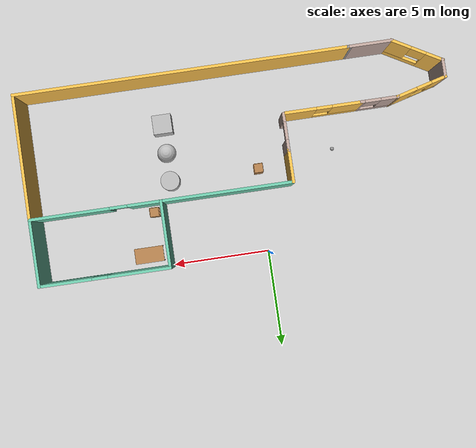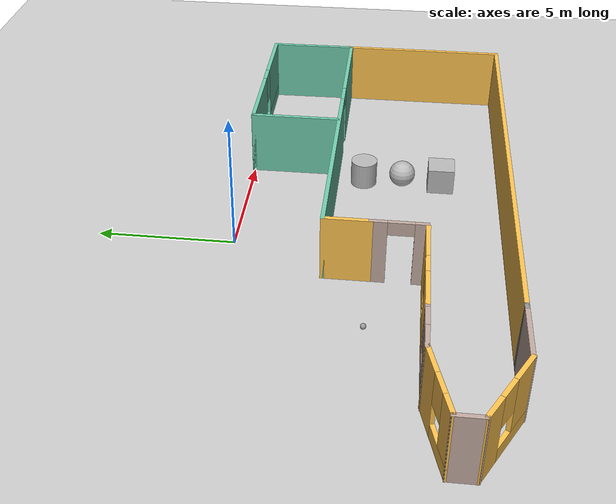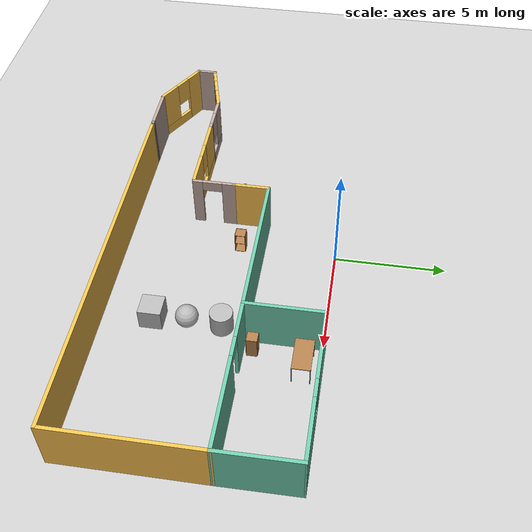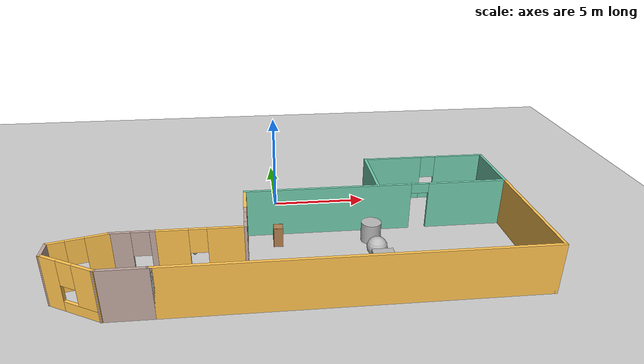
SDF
<sdf version="1.4">
 <world name="default">
  <light name="sun" type="directional">
   <pose>0 0 10 0 -0 0</pose>
   <diffuse>0.8 0.8 0.8 1</diffuse>
   <specular>0.2 0.2 0.2 1</specular>
   <attenuation>
    <range>1000</range>
    <constant>0.9</constant>
    <linear>0.01</linear>
    <quadratic>0.001</quadratic>
   </attenuation>
   <direction>-0.5 0.1 -0.9</direction>
  </light>
  <model name="ground_plane">
   <static>1</static>
   <link name="link">
    <collision name="collision">
     <geometry><plane><normal>0 0 1</normal><size>100 100</size></plane></geometry>
     <surface><friction><ode><mu>100</mu><mu2>50</mu2></ode></friction></surface>
    </collision>
    <visual name="visual">
     <cast_shadows>0</cast_shadows>
     <geometry><plane><normal>0 0 1</normal><size>100 100</size></plane></geometry>
     <material>
      <script><uri>file://media/materials/scripts/gazebo.material</uri><name>Gazebo/Grey</name></script>
     </material>
    </visual>
   </link>
  </model>
  <gravity>0 0 -9.8</gravity>
  <magnetic_field>6e-06 2.3e-05 -4.2e-05</magnetic_field>
  <atmosphere type="adiabatic"/>
  <physics name="default_physics" default="0" type="ode">
   <max_step_size>0.001</max_step_size>
   <real_time_factor>1</real_time_factor>
   <real_time_update_rate>1000</real_time_update_rate>
  </physics>
  <scene><ambient>0.4 0.4 0.4 1</ambient><background>0.7 0.7 0.7 1</background><shadows>1</shadows></scene>
  <spherical_coordinates>
   <surface_model>EARTH_WGS84</surface_model>
   <latitude_deg>0</latitude_deg>
   <longitude_deg>0</longitude_deg>
   <elevation>0</elevation>
   <heading_deg>0</heading_deg>
  </spherical_coordinates>
  <model name="myworld">
   <pose>0.843103 -4.83477 0 0 -0 0</pose>
   <link name="Wall_0">
    <pose>-4.54865 -1.96978 0 0 -0 3.14159</pose>
    <visual name="Wall_0_Visual_0">
     <pose>-1.18685 0 1.25 0 -0 0</pose>
     <geometry><box><size>1.6263 0.15 2.5</size></box></geometry>
     <material>
      <script><uri>file://media/materials/scripts/gazebo.material</uri><name>Gazebo/Grey</name></script>
      <ambient>1 0.764706 0.305882 1</ambient>
     </material>
     <meta><layer>0</layer></meta>
    </visual>
    <collision name="Wall_0_Collision_0">
     <geometry><box><size>1.6263 0.15 2.5</size></box></geometry>
     <pose>-1.18685 0 1.25 0 -0 0</pose>
    </collision>
    <visual name="Wall_0_Visual_1">
     <pose>0.813149 0 0.25 0 -0 0</pose>
     <geometry><box><size>2.3737 0.15 0.5</size></box></geometry>
     <material>
      <script><uri>file://media/materials/scripts/gazebo.material</uri><name>Gazebo/Grey</name></script>
      <ambient>1 0.764706 0.305882 1</ambient>
     </material>
     <meta><layer>0</layer></meta>
    </visual>
    <collision name="Wall_0_Collision_1">
     <geometry><box><size>2.3737 0.15 0.5</size></box></geometry>
     <pose>0.813149 0 0.25 0 -0 0</pose>
    </collision>
    <visual name="Wall_0_Visual_2">
     <pose>1.21315 0 1.5 0 -0 0</pose>
     <geometry><box><size>1.5737 0.15 2</size></box></geometry>
     <material>
      <script><uri>file://media/materials/scripts/gazebo.material</uri><name>Gazebo/Grey</name></script>
      <ambient>1 0.764706 0.305882 1</ambient>
     </material>
     <meta><layer>0</layer></meta>
    </visual>
    <collision name="Wall_0_Collision_2">
     <geometry><box><size>1.5737 0.15 2</size></box></geometry>
     <pose>1.21315 0 1.5 0 -0 0</pose>
    </collision>
    <visual name="Wall_0_Visual_3">
     <pose>0.026298 0 1.9 0 -0 0</pose>
     <geometry><box><size>0.8 0.15 1.2</size></box></geometry>
     <material>
      <script><uri>file://media/materials/scripts/gazebo.material</uri><name>Gazebo/Grey</name></script>
      <ambient>1 0.764706 0.305882 1</ambient>
     </material>
     <meta><layer>0</layer></meta>
    </visual>
    <collision name="Wall_0_Collision_3">
     <geometry><box><size>0.8 0.15 1.2</size></box></geometry>
     <pose>0.026298 0 1.9 0 -0 0</pose>
    </collision>
   </link>
   <link name="Wall_16">
    <pose>-7.39865 -1.96978 0 0 -0 3.14159</pose>
    <visual name="Wall_16_Visual_0">
     <pose>-0.874364 0 1.25 0 -0 0</pose>
     <geometry><box><size>0.251273 0.15 2.5</size></box></geometry>
     <material>
      <script><uri>file://media/materials/scripts/gazebo.material</uri><name>Gazebo/Grey</name></script>
      <ambient>0.760784 0.662745 0.627451 1</ambient>
     </material>
     <meta><layer>0</layer></meta>
    </visual>
    <collision name="Wall_16_Collision_0">
     <geometry><box><size>0.251273 0.15 2.5</size></box></geometry>
     <pose>-0.874364 0 1.25 0 -0 0</pose>
    </collision>
    <visual name="Wall_16_Visual_1">
     <pose>0.125636 0 0.25 0 -0 0</pose>
     <geometry><box><size>1.74873 0.15 0.5</size></box></geometry>
     <material>
      <script><uri>file://media/materials/scripts/gazebo.material</uri><name>Gazebo/Grey</name></script>
      <ambient>0.760784 0.662745 0.627451 1</ambient>
     </material>
     <meta><layer>0</layer></meta>
    </visual>
    <collision name="Wall_16_Collision_1">
     <geometry><box><size>1.74873 0.15 0.5</size></box></geometry>
     <pose>0.125636 0 0.25 0 -0 0</pose>
    </collision>
    <visual name="Wall_16_Visual_2">
     <pose>0.525636 0 1.5 0 -0 0</pose>
     <geometry><box><size>0.948727 0.15 2</size></box></geometry>
     <material>
      <script><uri>file://media/materials/scripts/gazebo.material</uri><name>Gazebo/Grey</name></script>
      <ambient>0.760784 0.662745 0.627451 1</ambient>
     </material>
     <meta><layer>0</layer></meta>
    </visual>
    <collision name="Wall_16_Collision_2">
     <geometry><box><size>0.948727 0.15 2</size></box></geometry>
     <pose>0.525636 0 1.5 0 -0 0</pose>
    </collision>
    <visual name="Wall_16_Visual_3">
     <pose>-0.348727 0 1.9 0 -0 0</pose>
     <geometry><box><size>0.8 0.15 1.2</size></box></geometry>
     <material>
      <script><uri>file://media/materials/scripts/gazebo.material</uri><name>Gazebo/Grey</name></script>
      <ambient>0.760784 0.662745 0.627451 1</ambient>
     </material>
     <meta><layer>0</layer></meta>
    </visual>
    <collision name="Wall_16_Collision_3">
     <geometry><box><size>0.8 0.15 1.2</size></box></geometry>
     <pose>-0.348727 0 1.9 0 -0 0</pose>
    </collision>
   </link>
   <link name="Wall_17">
    <pose>-9.57936 -2.30625 0 0 0 -2.87979</pose>
    <visual name="Wall_17_Visual_0">
     <pose>-0.813396 0 1.25 0 -0 0</pose>
     <geometry><box><size>1.12321 0.15 2.5</size></box></geometry>
     <material>
      <script><uri>file://media/materials/scripts/gazebo.material</uri><name>Gazebo/Grey</name></script>
      <ambient>1 0.764706 0.305882 1</ambient>
     </material>
     <meta><layer>0</layer></meta>
    </visual>
    <collision name="Wall_17_Collision_0">
     <geometry><box><size>1.12321 0.15 2.5</size></box></geometry>
     <pose>-0.813396 0 1.25 0 -0 0</pose>
    </collision>
    <visual name="Wall_17_Visual_1">
     <pose>0.561604 0 0.25 0 -0 0</pose>
     <geometry><box><size>1.62679 0.15 0.5</size></box></geometry>
     <material>
      <script><uri>file://media/materials/scripts/gazebo.material</uri><name>Gazebo/Grey</name></script>
      <ambient>1 0.764706 0.305882 1</ambient>
     </material>
     <meta><layer>0</layer></meta>
    </visual>
    <collision name="Wall_17_Collision_1">
     <geometry><box><size>1.62679 0.15 0.5</size></box></geometry>
     <pose>0.561604 0 0.25 0 -0 0</pose>
    </collision>
    <visual name="Wall_17_Visual_2">
     <pose>0.961604 0 1.5 0 -0 0</pose>
     <geometry><box><size>0.826792 0.15 2</size></box></geometry>
     <material>
      <script><uri>file://media/materials/scripts/gazebo.material</uri><name>Gazebo/Grey</name></script>
      <ambient>1 0.764706 0.305882 1</ambient>
     </material>
     <meta><layer>0</layer></meta>
    </visual>
    <collision name="Wall_17_Collision_2">
     <geometry><box><size>0.826792 0.15 2</size></box></geometry>
     <pose>0.961604 0 1.5 0 -0 0</pose>
    </collision>
    <visual name="Wall_17_Visual_3">
     <pose>0.148208 0 1.9 0 -0 0</pose>
     <geometry><box><size>0.8 0.15 1.2</size></box></geometry>
     <material>
      <script><uri>file://media/materials/scripts/gazebo.material</uri><name>Gazebo/Grey</name></script>
      <ambient>1 0.764706 0.305882 1</ambient>
     </material>
     <meta><layer>0</layer></meta>
    </visual>
    <collision name="Wall_17_Collision_3">
     <geometry><box><size>0.8 0.15 1.2</size></box></geometry>
     <pose>0.148208 0 1.9 0 -0 0</pose>
    </collision>
   </link>
   <link name="Wall_18">
    <collision name="Wall_18_Collision">
     <geometry><box><size>1 0.15 2.5</size></box></geometry>
     <pose>0 0 1.25 0 -0 0</pose>
    </collision>
    <visual name="Wall_18_Visual">
     <pose>0 0 1.25 0 -0 0</pose>
     <geometry><box><size>1 0.15 2.5</size></box></geometry>
     <material>
      <script><uri>file://media/materials/scripts/gazebo.material</uri><name>Gazebo/Grey</name></script>
      <ambient>0.760784 0.662745 0.627451 1</ambient>
     </material>
     <meta><layer>0</layer></meta>
    </visual>
    <pose>-10.8351 -3.06771 0 0 0 -1.5708</pose>
   </link>
   <link name="Wall_19">
    <pose>-9.63675 -4.16785 0 0 0 -0.513078</pose>
    <visual name="Wall_19_Visual_0">
     <pose>-0.96391 0 1.25 0 -0 0</pose>
     <geometry><box><size>0.973008 0.15 2.5</size></box></geometry>
     <material>
      <script><uri>file://media/materials/scripts/gazebo.material</uri><name>Gazebo/Grey</name></script>
      <ambient>1 0.764706 0.305882 1</ambient>
     </material>
     <meta><layer>0</layer></meta>
    </visual>
    <collision name="Wall_19_Collision_0">
     <geometry><box><size>0.973008 0.15 2.5</size></box></geometry>
     <pose>-0.96391 0 1.25 0 -0 0</pose>
    </collision>
    <visual name="Wall_19_Visual_1">
     <pose>0.486504 0 0.25 0 -0 0</pose>
     <geometry><box><size>1.92782 0.15 0.5</size></box></geometry>
     <material>
      <script><uri>file://media/materials/scripts/gazebo.material</uri><name>Gazebo/Grey</name></script>
      <ambient>1 0.764706 0.305882 1</ambient>
     </material>
     <meta><layer>0</layer></meta>
    </visual>
    <collision name="Wall_19_Collision_1">
     <geometry><box><size>1.92782 0.15 0.5</size></box></geometry>
     <pose>0.486504 0 0.25 0 -0 0</pose>
    </collision>
    <visual name="Wall_19_Visual_2">
     <pose>0.886504 0 1.5 0 -0 0</pose>
     <geometry><box><size>1.12782 0.15 2</size></box></geometry>
     <material>
      <script><uri>file://media/materials/scripts/gazebo.material</uri><name>Gazebo/Grey</name></script>
      <ambient>1 0.764706 0.305882 1</ambient>
     </material>
     <meta><layer>0</layer></meta>
    </visual>
    <collision name="Wall_19_Collision_2">
     <geometry><box><size>1.12782 0.15 2</size></box></geometry>
     <pose>0.886504 0 1.5 0 -0 0</pose>
    </collision>
    <visual name="Wall_19_Visual_3">
     <pose>-0.077406 0 1.9 0 -0 0</pose>
     <geometry><box><size>0.8 0.15 1.2</size></box></geometry>
     <material>
      <script><uri>file://media/materials/scripts/gazebo.material</uri><name>Gazebo/Grey</name></script>
      <ambient>1 0.764706 0.305882 1</ambient>
     </material>
     <meta><layer>0</layer></meta>
    </visual>
    <collision name="Wall_19_Collision_3">
     <geometry><box><size>0.8 0.15 1.2</size></box></geometry>
     <pose>-0.077406 0 1.9 0 -0 0</pose>
    </collision>
   </link>
   <link name="Wall_2">
    <collision name="Wall_2_Collision">
     <geometry><box><size>17.25 0.15 2.5</size></box></geometry>
     <pose>0 0 1.25 0 -0 0</pose>
    </collision>
    <visual name="Wall_2_Visual">
     <pose>0 0 1.25 0 -0 0</pose>
     <geometry><box><size>17.25 0.15 2.5</size></box></geometry>
     <material>
      <script><uri>file://media/materials/scripts/gazebo.material</uri><name>Gazebo/Grey</name></script>
      <ambient>1 0.764706 0.305882 1</ambient>
     </material>
     <meta><layer>0</layer></meta>
    </visual>
    <pose>2.31156 -4.84298 0 0 -0 0</pose>
   </link>
   <link name="Wall_21">
    <pose>-2.48844 -1.01798 0 0 0 -1.5708</pose>
    <visual name="Wall_21_Visual_0">
     <pose>-0.687814 0 1.25 0 -0 0</pose>
     <geometry><box><size>0.624372 0.15 2.5</size></box></geometry>
     <material>
      <script><uri>file://media/materials/scripts/gazebo.material</uri><name>Gazebo/Grey</name></script>
      <ambient>0.760784 0.662745 0.627451 1</ambient>
     </material>
     <meta><layer>0</layer></meta>
    </visual>
    <collision name="Wall_21_Collision_0">
     <geometry><box><size>0.624372 0.15 2.5</size></box></geometry>
     <pose>-0.687814 0 1.25 0 -0 0</pose>
    </collision>
    <visual name="Wall_21_Visual_1">
     <pose>0.762186 0 1.25 0 -0 0</pose>
     <geometry><box><size>0.475628 0.15 2.5</size></box></geometry>
     <material>
      <script><uri>file://media/materials/scripts/gazebo.material</uri><name>Gazebo/Grey</name></script>
      <ambient>0.760784 0.662745 0.627451 1</ambient>
     </material>
     <meta><layer>0</layer></meta>
    </visual>
    <collision name="Wall_21_Collision_1">
     <geometry><box><size>0.475628 0.15 2.5</size></box></geometry>
     <pose>0.762186 0 1.25 0 -0 0</pose>
    </collision>
    <visual name="Wall_21_Visual_2">
     <pose>0.074372 0 2.25 0 -0 0</pose>
     <geometry><box><size>0.9 0.15 0.5</size></box></geometry>
     <material>
      <script><uri>file://media/materials/scripts/gazebo.material</uri><name>Gazebo/Grey</name></script>
      <ambient>0.760784 0.662745 0.627451 1</ambient>
     </material>
     <meta><layer>0</layer></meta>
    </visual>
    <collision name="Wall_21_Collision_2">
     <geometry><box><size>0.9 0.15 0.5</size></box></geometry>
     <pose>0.074372 0 2.25 0 -0 0</pose>
    </collision>
   </link>
   <link name="Wall_3">
    <collision name="Wall_3_Collision">
     <geometry><box><size>6.5 0.15 2.5</size></box></geometry>
     <pose>0 0 1.25 0 -0 0</pose>
    </collision>
    <visual name="Wall_3_Visual">
     <pose>0 0 1.25 0 -0 0</pose>
     <geometry><box><size>6.5 0.15 2.5</size></box></geometry>
     <material>
      <script><uri>file://media/materials/scripts/gazebo.material</uri><name>Gazebo/Grey</name></script>
      <ambient>1 0.764706 0.305882 1</ambient>
     </material>
     <meta><layer>0</layer></meta>
    </visual>
    <pose>10.8616 -1.66798 0 0 -0 1.5708</pose>
   </link>
   <link name="Wall_31">
    <collision name="Wall_31_Collision">
     <geometry><box><size>3.5 0.15 2.5</size></box></geometry>
     <pose>0 0 1.25 0 -0 0</pose>
    </collision>
    <visual name="Wall_31_Visual">
     <pose>0 0 1.25 0 -0 0</pose>
     <geometry><box><size>3.5 0.15 2.5</size></box></geometry>
     <material>
      <script><uri>file://media/materials/scripts/gazebo.material</uri><name>Gazebo/Grey</name></script>
      <ambient>0.435294 0.796078 0.67451 1</ambient>
     </material>
     <meta><layer>0</layer></meta>
    </visual>
    <pose>4.23207 3.19449 0 0 -0 1.5708</pose>
   </link>
   <link name="Wall_32">
    <pose>7.53207 4.86949 0 0 -0 0</pose>
    <visual name="Wall_32_Visual_0">
     <pose>-1.76514 0 1.25 0 -0 0</pose>
     <geometry><box><size>3.21973 0.15 2.5</size></box></geometry>
     <material>
      <script><uri>file://media/materials/scripts/gazebo.material</uri><name>Gazebo/Grey</name></script>
      <ambient>0.435294 0.796078 0.67451 1</ambient>
     </material>
     <meta><layer>0</layer></meta>
    </visual>
    <collision name="Wall_32_Collision_0">
     <geometry><box><size>3.21973 0.15 2.5</size></box></geometry>
     <pose>-1.76514 0 1.25 0 -0 0</pose>
    </collision>
    <visual name="Wall_32_Visual_1">
     <pose>1.60986 0 0.25 0 -0 0</pose>
     <geometry><box><size>3.53027 0.15 0.5</size></box></geometry>
     <material>
      <script><uri>file://media/materials/scripts/gazebo.material</uri><name>Gazebo/Grey</name></script>
      <ambient>0.435294 0.796078 0.67451 1</ambient>
     </material>
     <meta><layer>0</layer></meta>
    </visual>
    <collision name="Wall_32_Collision_1">
     <geometry><box><size>3.53027 0.15 0.5</size></box></geometry>
     <pose>1.60986 0 0.25 0 -0 0</pose>
    </collision>
    <visual name="Wall_32_Visual_2">
     <pose>2.00986 0 1.5 0 -0 0</pose>
     <geometry><box><size>2.73027 0.15 2</size></box></geometry>
     <material>
      <script><uri>file://media/materials/scripts/gazebo.material</uri><name>Gazebo/Grey</name></script>
      <ambient>0.435294 0.796078 0.67451 1</ambient>
     </material>
     <meta><layer>0</layer></meta>
    </visual>
    <collision name="Wall_32_Collision_2">
     <geometry><box><size>2.73027 0.15 2</size></box></geometry>
     <pose>2.00986 0 1.5 0 -0 0</pose>
    </collision>
    <visual name="Wall_32_Visual_3">
     <pose>0.244726 0 1.9 0 -0 0</pose>
     <geometry><box><size>0.8 0.15 1.2</size></box></geometry>
     <material>
      <script><uri>file://media/materials/scripts/gazebo.material</uri><name>Gazebo/Grey</name></script>
      <ambient>0.435294 0.796078 0.67451 1</ambient>
     </material>
     <meta><layer>0</layer></meta>
    </visual>
    <collision name="Wall_32_Collision_3">
     <geometry><box><size>0.8 0.15 1.2</size></box></geometry>
     <pose>0.244726 0 1.9 0 -0 0</pose>
    </collision>
   </link>
   <link name="Wall_33">
    <collision name="Wall_33_Collision">
     <geometry><box><size>3.5126 0.15 2.5</size></box></geometry>
     <pose>0 0 1.25 0 -0 0</pose>
    </collision>
    <visual name="Wall_33_Visual">
     <pose>0 0 1.25 0 -0 0</pose>
     <geometry><box><size>3.5126 0.15 2.5</size></box></geometry>
     <material>
      <script><uri>file://media/materials/scripts/gazebo.material</uri><name>Gazebo/Grey</name></script>
      <ambient>0.435294 0.796078 0.67451 1</ambient>
     </material>
     <meta><layer>0</layer></meta>
    </visual>
    <pose>10.8468 3.18825 0 0 0 -1.56202</pose>
   </link>
   <link name="Wall_4">
    <pose>4.18656 1.50702 0 0 -0 3.14159</pose>
    <visual name="Wall_4_Visual_0">
     <pose>-4.7012 0 1.25 0 -0 0</pose>
     <geometry><box><size>4.09761 0.15 2.5</size></box></geometry>
     <material>
      <script><uri>file://media/materials/scripts/gazebo.material</uri><name>Gazebo/Grey</name></script>
      <ambient>0.435294 0.796078 0.67451 1</ambient>
     </material>
     <meta><layer>0</layer></meta>
    </visual>
    <collision name="Wall_4_Collision_0">
     <geometry><box><size>4.09761 0.15 2.5</size></box></geometry>
     <pose>-4.7012 0 1.25 0 -0 0</pose>
    </collision>
    <visual name="Wall_4_Visual_1">
     <pose>2.4988 0 1.25 0 -0 0</pose>
     <geometry><box><size>8.50239 0.15 2.5</size></box></geometry>
     <material>
      <script><uri>file://media/materials/scripts/gazebo.material</uri><name>Gazebo/Grey</name></script>
      <ambient>0.435294 0.796078 0.67451 1</ambient>
     </material>
     <meta><layer>0</layer></meta>
    </visual>
    <collision name="Wall_4_Collision_1">
     <geometry><box><size>8.50239 0.15 2.5</size></box></geometry>
     <pose>2.4988 0 1.25 0 -0 0</pose>
    </collision>
    <visual name="Wall_4_Visual_2">
     <pose>-2.20239 0 2.25 0 -0 0</pose>
     <geometry><box><size>0.9 0.15 0.5</size></box></geometry>
     <material>
      <script><uri>file://media/materials/scripts/gazebo.material</uri><name>Gazebo/Grey</name></script>
      <ambient>0.435294 0.796078 0.67451 1</ambient>
     </material>
     <meta><layer>0</layer></meta>
    </visual>
    <collision name="Wall_4_Collision_2">
     <geometry><box><size>0.9 0.15 0.5</size></box></geometry>
     <pose>-2.20239 0 2.25 0 -0 0</pose>
    </collision>
   </link>
   <link name="Wall_5">
    <collision name="Wall_5_Collision">
     <geometry><box><size>1.75 0.15 2.5</size></box></geometry>
     <pose>0 0 1.25 0 -0 0</pose>
    </collision>
    <visual name="Wall_5_Visual">
     <pose>0 0 1.25 0 -0 0</pose>
     <geometry><box><size>1.75 0.15 2.5</size></box></geometry>
     <material>
      <script><uri>file://media/materials/scripts/gazebo.material</uri><name>Gazebo/Grey</name></script>
      <ambient>1 0.764706 0.305882 1</ambient>
     </material>
     <meta><layer>0</layer></meta>
    </visual>
    <pose>-2.48844 0.707016 0 0 0 -1.5708</pose>
   </link>
   <link name="Wall_7">
    <collision name="Wall_7_Collision">
     <geometry><box><size>0.15 0.15 2.5</size></box></geometry>
     <pose>0 0 1.25 0 -0 0</pose>
    </collision>
    <visual name="Wall_7_Visual">
     <pose>0 0 1.25 0 -0 0</pose>
     <geometry><box><size>0.15 0.15 2.5</size></box></geometry>
     <material>
      <script><uri>file://media/materials/scripts/gazebo.material</uri><name>Gazebo/Grey</name></script>
      <ambient>1 1 1 1</ambient>
     </material>
     <meta><layer>0</layer></meta>
    </visual>
    <pose>-6.23844 -4.84298 0 0 -0 0</pose>
   </link>
   <link name="Wall_8">
    <collision name="Wall_8_Collision">
     <geometry><box><size>0.25 0.15 2.5</size></box></geometry>
     <pose>0 0 1.25 0 -0 0</pose>
    </collision>
    <visual name="Wall_8_Visual">
     <pose>0 0 1.25 0 -0 0</pose>
     <geometry><box><size>0.25 0.15 2.5</size></box></geometry>
     <material>
      <script><uri>file://media/materials/scripts/gazebo.material</uri><name>Gazebo/Grey</name></script>
      <ambient>1 1 1 1</ambient>
     </material>
     <meta><layer>0</layer></meta>
    </visual>
    <pose>-6.28844 -4.84298 0 0 -0 3.14159</pose>
   </link>
   <link name="Wall_9">
    <collision name="Wall_9_Collision">
     <geometry><box><size>2.25 0.15 2.5</size></box></geometry>
     <pose>0 0 1.25 0 -0 0</pose>
    </collision>
    <visual name="Wall_9_Visual">
     <pose>0 0 1.25 0 -0 0</pose>
     <geometry><box><size>2.25 0.15 2.5</size></box></geometry>
     <material>
      <script><uri>file://media/materials/scripts/gazebo.material</uri><name>Gazebo/Grey</name></script>
      <ambient>0.760784 0.662745 0.627451 1</ambient>
     </material>
     <meta><layer>0</layer></meta>
    </visual>
    <pose>-7.38844 -4.84298 0 0 -0 3.14159</pose>
   </link>
   <static>1</static>
  </model>
  <model name="cabinet">
   <static>1</static>
   <link name="cabinet_bottom_plate">
    <inertial>
     <pose>0 0 -1 0 -0 0</pose>
     <inertia><ixx>2.05</ixx><ixy>0</ixy><ixz>0</ixz><iyy>2.05</iyy><iyz>0</iyz><izz>2.05</izz></inertia>
     <mass>25</mass>
    </inertial>
    <collision name="cabinet_bottom_plate_geom">
     <pose>0 0 0.01 0 -0 0</pose>
     <geometry><box><size>0.45 0.45 0.02</size></box></geometry>
    </collision>
    <visual name="cabinet_bottom_plate_geom_visual">
     <pose>0 0 0.01 0 -0 0</pose>
     <geometry><box><size>0.45 0.45 0.02</size></box></geometry>
     <material>
      <script><uri>file://media/materials/scripts/gazebo.material</uri><name>Gazebo/Wood</name></script>
     </material>
    </visual>
    <collision name="cabinet_bottom_plate_geom_cabinet_back_plate">
     <pose>0.235 0 0.51 0 -0 0</pose>
     <geometry><box><size>0.02 0.45 1.02</size></box></geometry>
    </collision>
    <visual name="cabinet_bottom_plate_geom_cabinet_back_plate_visual">
     <pose>0.235 0 0.51 0 -0 0</pose>
     <geometry><box><size>0.02 0.45 1.02</size></box></geometry>
     <material>
      <script><uri>file://media/materials/scripts/gazebo.material</uri><name>Gazebo/Wood</name></script>
     </material>
    </visual>
    <collision name="cabinet_bottom_plate_geom_cabinet_left_plate">
     <pose>0 0.235 0.51 0 -0 0</pose>
     <geometry><box><size>0.45 0.02 1.02</size></box></geometry>
    </collision>
    <visual name="cabinet_bottom_plate_geom_cabinet_left_plate_visual">
     <pose>0 0.235 0.51 0 -0 0</pose>
     <geometry><box><size>0.45 0.02 1.02</size></box></geometry>
     <material>
      <script><uri>file://media/materials/scripts/gazebo.material</uri><name>Gazebo/Wood</name></script>
     </material>
    </visual>
    <collision name="cabinet_bottom_plate_geom_cabinet_middle_plate">
     <pose>0 0 0.51 0 -0 0</pose>
     <geometry><box><size>0.45 0.45 0.02</size></box></geometry>
    </collision>
    <visual name="cabinet_bottom_plate_geom_cabinet_middle_plate_visual">
     <pose>0 0 0.51 0 -0 0</pose>
     <geometry><box><size>0.45 0.45 0.02</size></box></geometry>
     <material>
      <script><uri>file://media/materials/scripts/gazebo.material</uri><name>Gazebo/Wood</name></script>
     </material>
    </visual>
    <collision name="cabinet_bottom_plate_geom_cabinet_right_plate">
     <pose>0 -0.235 0.51 0 -0 0</pose>
     <geometry><box><size>0.45 0.02 1.02</size></box></geometry>
    </collision>
    <visual name="cabinet_bottom_plate_geom_cabinet_right_plate_visual">
     <pose>0 -0.235 0.51 0 -0 0</pose>
     <geometry><box><size>0.45 0.02 1.02</size></box></geometry>
     <material>
      <script><uri>file://media/materials/scripts/gazebo.material</uri><name>Gazebo/Wood</name></script>
     </material>
    </visual>
    <collision name="cabinet_bottom_plate_geom_cabinet_top_plate">
     <pose>0 0 1.01 0 -0 0</pose>
     <geometry><box><size>0.45 0.45 0.02</size></box></geometry>
    </collision>
    <visual name="cabinet_bottom_plate_geom_cabinet_top_plate_visual">
     <pose>0 0 1.01 0 -0 0</pose>
     <geometry><box><size>0.45 0.45 0.02</size></box></geometry>
     <material>
      <script><uri>file://media/materials/scripts/gazebo.material</uri><name>Gazebo/Wood</name></script>
     </material>
    </visual>
   </link>
   <pose>-0.081682 -4.3792 0 0 -0 3.13658</pose>
  </model>
  <model name="table">
   <static>1</static>
   <link name="link">
    <collision name="surface">
     <pose>0 0 1 0 -0 0</pose>
     <geometry><box><size>1.5 0.8 0.03</size></box></geometry>
     <surface><friction><ode><mu>0.6</mu><mu2>0.6</mu2></ode></friction></surface>
    </collision>
    <visual name="visual1">
     <pose>0 0 1 0 -0 0</pose>
     <geometry><box><size>1.5 0.8 0.03</size></box></geometry>
     <material>
      <script><uri>file://media/materials/scripts/gazebo.material</uri><name>Gazebo/Wood</name></script>
     </material>
    </visual>
    <collision name="front_left_leg">
     <pose>0.68 0.38 0.5 0 -0 0</pose>
     <geometry><cylinder><radius>0.02</radius><length>1</length></cylinder></geometry>
    </collision>
    <visual name="front_left_leg">
     <pose>0.68 0.38 0.5 0 -0 0</pose>
     <geometry><cylinder><radius>0.02</radius><length>1</length></cylinder></geometry>
     <material>
      <script><uri>file://media/materials/scripts/gazebo.material</uri><name>Gazebo/Grey</name></script>
     </material>
    </visual>
    <collision name="front_right_leg">
     <pose>0.68 -0.38 0.5 0 -0 0</pose>
     <geometry><cylinder><radius>0.02</radius><length>1</length></cylinder></geometry>
    </collision>
    <visual name="front_right_leg">
     <pose>0.68 -0.38 0.5 0 -0 0</pose>
     <geometry><cylinder><radius>0.02</radius><length>1</length></cylinder></geometry>
     <material>
      <script><uri>file://media/materials/scripts/gazebo.material</uri><name>Gazebo/Grey</name></script>
     </material>
    </visual>
    <collision name="back_right_leg">
     <pose>-0.68 -0.38 0.5 0 -0 0</pose>
     <geometry><cylinder><radius>0.02</radius><length>1</length></cylinder></geometry>
    </collision>
    <visual name="back_right_leg">
     <pose>-0.68 -0.38 0.5 0 -0 0</pose>
     <geometry><cylinder><radius>0.02</radius><length>1</length></cylinder></geometry>
     <material>
      <script><uri>file://media/materials/scripts/gazebo.material</uri><name>Gazebo/Grey</name></script>
     </material>
    </visual>
    <collision name="back_left_leg">
     <pose>-0.68 0.38 0.5 0 -0 0</pose>
     <geometry><cylinder><radius>0.02</radius><length>1</length></cylinder></geometry>
    </collision>
    <visual name="back_left_leg">
     <pose>-0.68 0.38 0.5 0 -0 0</pose>
     <geometry><cylinder><radius>0.02</radius><length>1</length></cylinder></geometry>
     <material>
      <script><uri>file://media/materials/scripts/gazebo.material</uri><name>Gazebo/Grey</name></script>
     </material>
    </visual>
   </link>
   <pose>6.17414 -0.723183 0 0 -0 0</pose>
  </model>
  <model name="cabinet_0">
   <static>1</static>
   <link name="cabinet_bottom_plate">
    <inertial>
     <pose>0 0 -1 0 -0 0</pose>
     <inertia><ixx>2.05</ixx><ixy>0</ixy><ixz>0</ixz><iyy>2.05</iyy><iyz>0</iyz><izz>2.05</izz></inertia>
     <mass>25</mass>
    </inertial>
    <collision name="cabinet_bottom_plate_geom">
     <pose>0 0 0.01 0 -0 0</pose>
     <geometry><box><size>0.45 0.45 0.02</size></box></geometry>
    </collision>
    <visual name="cabinet_bottom_plate_geom_visual">
     <pose>0 0 0.01 0 -0 0</pose>
     <geometry><box><size>0.45 0.45 0.02</size></box></geometry>
     <material>
      <script><uri>file://media/materials/scripts/gazebo.material</uri><name>Gazebo/Wood</name></script>
     </material>
    </visual>
    <collision name="cabinet_bottom_plate_geom_cabinet_back_plate">
     <pose>0.235 0 0.51 0 -0 0</pose>
     <geometry><box><size>0.02 0.45 1.02</size></box></geometry>
    </collision>
    <visual name="cabinet_bottom_plate_geom_cabinet_back_plate_visual">
     <pose>0.235 0 0.51 0 -0 0</pose>
     <geometry><box><size>0.02 0.45 1.02</size></box></geometry>
     <material>
      <script><uri>file://media/materials/scripts/gazebo.material</uri><name>Gazebo/Wood</name></script>
     </material>
    </visual>
    <collision name="cabinet_bottom_plate_geom_cabinet_left_plate">
     <pose>0 0.235 0.51 0 -0 0</pose>
     <geometry><box><size>0.45 0.02 1.02</size></box></geometry>
    </collision>
    <visual name="cabinet_bottom_plate_geom_cabinet_left_plate_visual">
     <pose>0 0.235 0.51 0 -0 0</pose>
     <geometry><box><size>0.45 0.02 1.02</size></box></geometry>
     <material>
      <script><uri>file://media/materials/scripts/gazebo.material</uri><name>Gazebo/Wood</name></script>
     </material>
    </visual>
    <collision name="cabinet_bottom_plate_geom_cabinet_middle_plate">
     <pose>0 0 0.51 0 -0 0</pose>
     <geometry><box><size>0.45 0.45 0.02</size></box></geometry>
    </collision>
    <visual name="cabinet_bottom_plate_geom_cabinet_middle_plate_visual">
     <pose>0 0 0.51 0 -0 0</pose>
     <geometry><box><size>0.45 0.45 0.02</size></box></geometry>
     <material>
      <script><uri>file://media/materials/scripts/gazebo.material</uri><name>Gazebo/Wood</name></script>
     </material>
    </visual>
    <collision name="cabinet_bottom_plate_geom_cabinet_right_plate">
     <pose>0 -0.235 0.51 0 -0 0</pose>
     <geometry><box><size>0.45 0.02 1.02</size></box></geometry>
    </collision>
    <visual name="cabinet_bottom_plate_geom_cabinet_right_plate_visual">
     <pose>0 -0.235 0.51 0 -0 0</pose>
     <geometry><box><size>0.45 0.02 1.02</size></box></geometry>
     <material>
      <script><uri>file://media/materials/scripts/gazebo.material</uri><name>Gazebo/Wood</name></script>
     </material>
    </visual>
    <collision name="cabinet_bottom_plate_geom_cabinet_top_plate">
     <pose>0 0 1.01 0 -0 0</pose>
     <geometry><box><size>0.45 0.45 0.02</size></box></geometry>
    </collision>
    <visual name="cabinet_bottom_plate_geom_cabinet_top_plate_visual">
     <pose>0 0 1.01 0 -0 0</pose>
     <geometry><box><size>0.45 0.45 0.02</size></box></geometry>
     <material>
      <script><uri>file://media/materials/scripts/gazebo.material</uri><name>Gazebo/Wood</name></script>
     </material>
    </visual>
   </link>
   <pose>5.61744 -2.88456 0 0 -0 0</pose>
  </model>
  <model name="textured_shapes">
   <pose>4.57197 -5.88633 0.5 0 -0 0</pose>
   <link name="box">
    <pose>0 -1.5 0 0 -0 0</pose>
    <collision name="collision"><geometry><box><size>1 1 1</size></box></geometry></collision>
    <visual name="visual">
     <geometry><box><size>1 1 1</size></box></geometry>
     <material>
      <script>
       <uri>model://textured_shapes/materials/scripts</uri>
       <uri>model://textured_shapes/materials/textures</uri>
       <name>TexturedShape/Squares</name>
      </script>
     </material>
    </visual>
    <inertial>
     <inertia><ixx>1</ixx><ixy>0</ixy><ixz>0</ixz><iyy>1</iyy><iyz>0</iyz><izz>1</izz></inertia>
     <mass>1</mass>
    </inertial>
   </link>
   <link name="sphere">
    <collision name="collision"><geometry><sphere><radius>0.5</radius></sphere></geometry></collision>
    <visual name="visual">
     <geometry><sphere><radius>0.5</radius></sphere></geometry>
     <material>
      <script>
       <uri>model://textured_shapes/materials/scripts</uri>
       <uri>model://textured_shapes/materials/textures</uri>
       <name>TexturedShape/Squares</name>
      </script>
     </material>
    </visual>
    <inertial>
     <inertia><ixx>1</ixx><ixy>0</ixy><ixz>0</ixz><iyy>1</iyy><iyz>0</iyz><izz>1</izz></inertia>
     <mass>1</mass>
    </inertial>
   </link>
   <link name="cylinder">
    <pose>0 1.5 0 0 -0 0</pose>
    <collision name="collision">
     <geometry><cylinder><radius>0.5</radius><length>1</length></cylinder></geometry>
    </collision>
    <visual name="visual">
     <geometry><cylinder><radius>0.5</radius><length>1</length></cylinder></geometry>
     <material>
      <script>
       <uri>model://textured_shapes/materials/scripts</uri>
       <uri>model://textured_shapes/materials/textures</uri>
       <name>TexturedShape/Squares</name>
      </script>
     </material>
    </visual>
    <inertial>
     <inertia><ixx>1</ixx><ixy>0</ixy><ixz>0</ixz><iyy>1</iyy><iyz>0</iyz><izz>1</izz></inertia>
     <mass>1</mass>
    </inertial>
   </link>
  </model>
  <model name="my_ball">
   <link name="link">
    <inertial>
     <mass>1</mass>
     <inertia><ixx>0.1</ixx><ixy>0</ixy><ixz>0</ixz><iyy>0.1</iyy><iyz>0</iyz><izz>0.1</izz></inertia>
    </inertial>
    <visual name="visual">
     <geometry><sphere><radius>0.1</radius></sphere></geometry>
     <material>
      <script><name>Gazebo/Grey</name><uri>file://media/materials/scripts/gazebo.material</uri></script>
      <ambient>1 1 1 1</ambient>
      <diffuse>1 1 1 1</diffuse>
      <specular>1 1 1 1</specular>
      <emissive>1 1 1 1</emissive>
      <shader type="vertex"><normal_map>__default__</normal_map></shader>
     </material>
    </visual>
    <collision name="collision">
     <geometry><sphere><radius>0.1</radius></sphere></geometry>
     <surface>
      <friction>
       <ode><mu>1</mu><mu2>1</mu2><fdir1>0 0 0</fdir1><slip1>0</slip1><slip2>0</slip2></ode>
       <torsional>
        <coefficient>1</coefficient>
        <patch_radius>0</patch_radius>
        <surface_radius>0</surface_radius>
        <use_patch_radius>1</use_patch_radius>
        <ode><slip>0</slip></ode>
       </torsional>
      </friction>
      <bounce><restitution_coefficient>0</restitution_coefficient><threshold>1e+06</threshold></bounce>
      <contact>
       <collide_without_contact>0</collide_without_contact>
       <collide_without_contact_bitmask>1</collide_without_contact_bitmask>
       <collide_bitmask>1</collide_bitmask>
       <ode>
        <soft_cfm>0</soft_cfm>
        <soft_erp>0.2</soft_erp>
        <kp>1e+13</kp>
        <kd>1</kd>
        <max_vel>0.01</max_vel>
        <min_depth>0</min_depth>
       </ode>
       <bullet>
        <split_impulse>1</split_impulse>
        <split_impulse_penetration_threshold>-0.01</split_impulse_penetration_threshold>
        <soft_cfm>0</soft_cfm>
        <soft_erp>0.2</soft_erp>
        <kp>1e+13</kp>
        <kd>1</kd>
       </bullet>
      </contact>
     </surface>
    </collision>
   </link>
   <static>0</static>
   <pose>-4.16112 -4.90344 0.1 0 -0 0</pose>
  </model>
  <plugin filename="libcollision_map_creator.so" name="collision_map_creator"/>
 </world>
</sdf>
